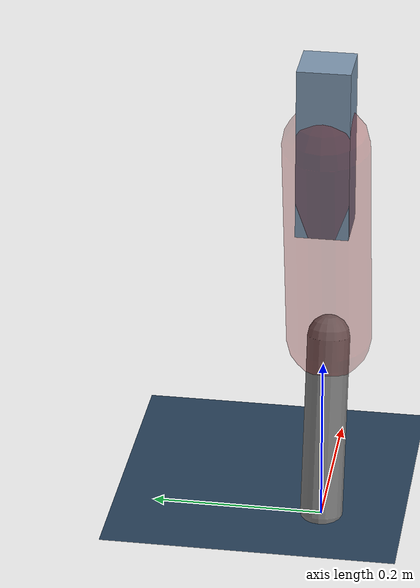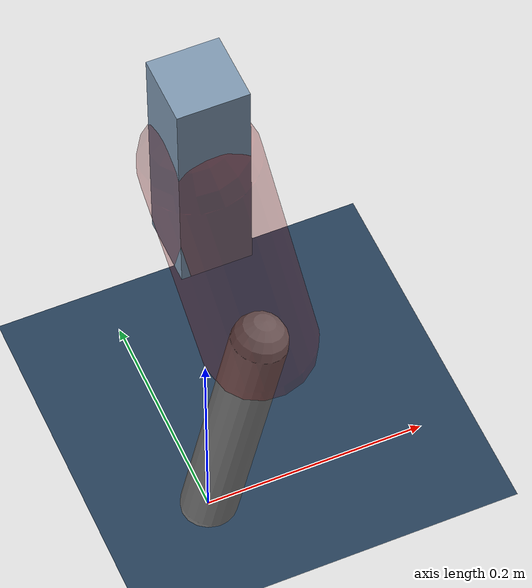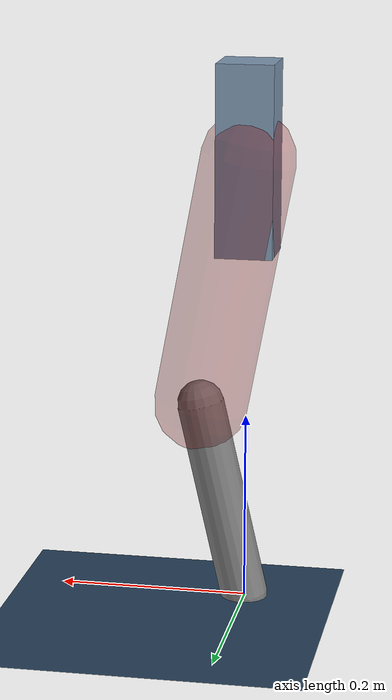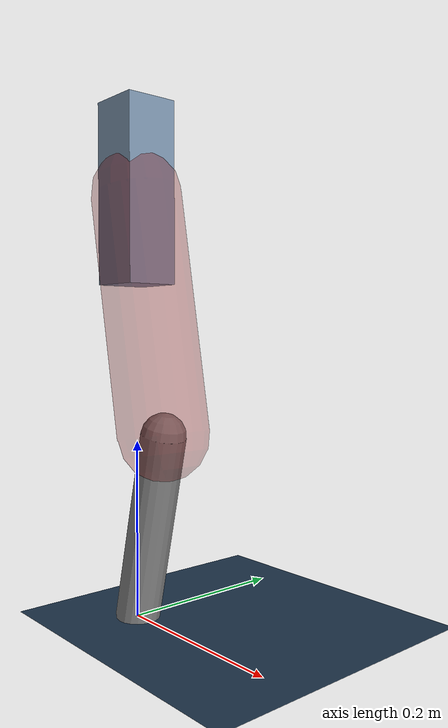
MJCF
<mujoco model="Hopper2D">
	<compiler inertiafromgeom="true" angle="radian" />
	<option timestep="0.001" integrator="implicit" cone="elliptic" solver="Newton" tolerance="1e-10" />

	<default>
		<geom contype="1" conaffinity="1" condim="3" friction="2 0.005 0.0001" solref="0.005 1" />
		<joint limited="true" damping="0.1" />
	</default>

	<asset>
		<texture name="skybox" type="skybox" builtin="gradient" rgb1=".4 .6 .8" rgb2="0 0 0" width="800" height="800" />
		<texture name="grid" type="2d" builtin="checker" rgb1=".1 .2 .3" rgb2=".2 .3 .4" width="300" height="300" mark="edge" markrgb=".2 .3 .4" />
		<material name="ground" texture="grid" texrepeat="1 1" texuniform="true" reflectance="0.1" />
		<material name="leg" rgba="0.5 0.6 0.7 1" />
	</asset>

	<worldbody>

		<geom name="floor" type="plane" size="5 5 0.25" material="ground" />

		<light directional="false" diffuse="0.8 0.8 0.8" specular="0.3 0.3 0.3" pos="0 0 2" dir="0 0 -1" />
		<light mode="targetbodycom" target="base" directional="false" diffuse="0.8 0.8 0.8" specular="0.3 0.3 0.3" pos="0 0 2" dir="0 0 -1" />

		<camera name="fixed" pos="0 -2 1" xyaxes="1 0 0 0 0 1" />
		<camera name="tracking" mode="trackcom" pos="0 -3 1" />

		<body name="root" pos="0 0 0.4750595529248186">
			<joint name="slide_x" type="slide" axis="1 0 0" range="-100 100" />
			<joint name="slide_z" type="slide" axis="0 0 1" range="0 10" />

			<body name="base" pos="0 0 0">
				<geom name="torso" type="box" size="0.03 0.03 0.1" mass="3.377" material="leg" />

				<body name="link1" pos="0 0 0" euler="0 1.3882429132880127 0">
					<joint type="hinge" axis="0 -1 0" pos="0 0 0" name="hinge1" limited="true" range="-3.14 3.14" stiffness="0" damping="0.1" />
					<geom name="thigh" type="capsule" fromto="0 0 0 0.26828114115216517 0 0" size="0.05" rgba="0.5 0 0 0.3" mass="0.9041309669956294" />

					<body name="link2" pos="0.26828114115216517 0 0" euler="0 0.4091599575598851 0">
						<joint type="hinge" axis="0 -1 0" pos="0 0 0" name="hinge2" limited="true" range="-3.14 3.14" stiffness="0" damping="0.1" />
						<geom name="shank" type="capsule" fromto="0 0 0 0.21677841177265347 0 0" size="0.025" mass="0.41500057059538814" />

					</body>
				</body>
			</body>
		</body>
	</worldbody>

	<actuator>
		<motor name="torque1" joint="hinge1" ctrlrange="-124.94257908603653 124.94257908603653" ctrllimited="true" gear="1" />
		<motor name="torque2" joint="hinge2" ctrlrange="-134.24593554995053 134.24593554995053" ctrllimited="true" gear="1" />
	</actuator>
</mujoco>
